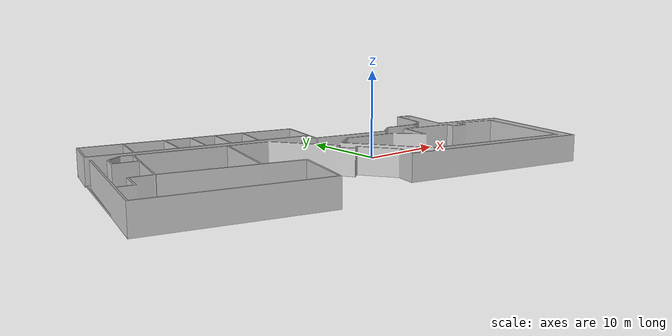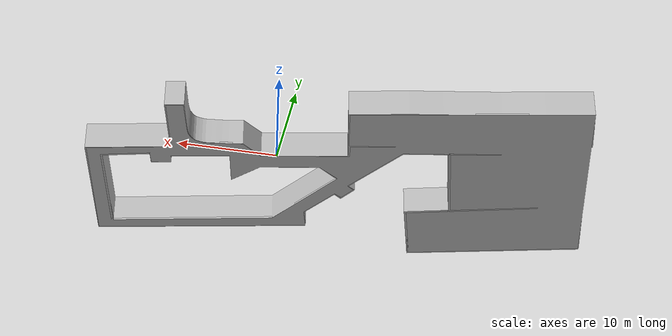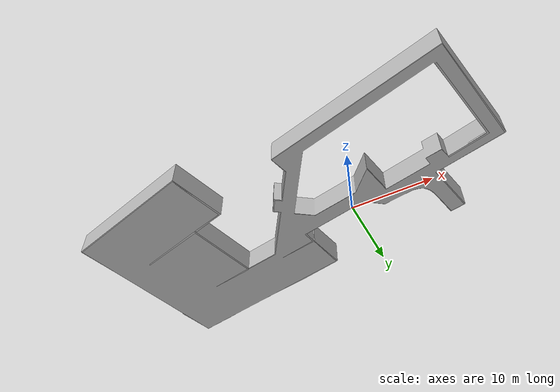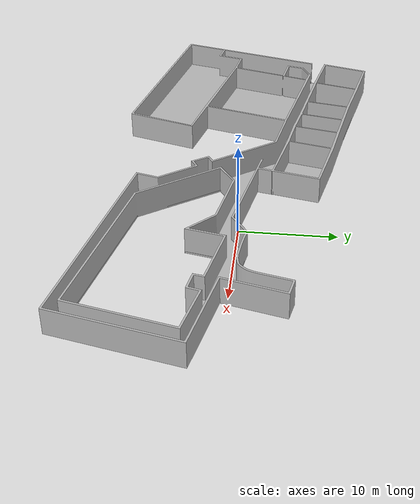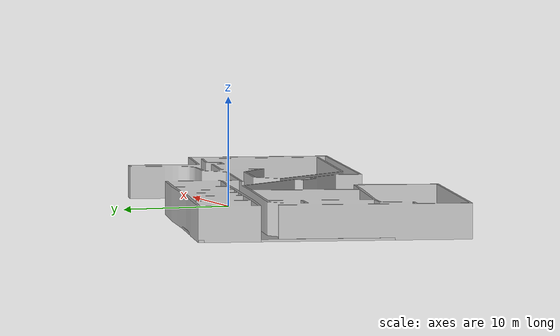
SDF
<?xml version="1.0" ?>
<sdf version="1.6">
  <model name="imt_floor">

    <static>true</static>

    <!-- FLOOR -->
    <link name="floor_link">

      <visual name="floor_visual">
        <geometry>
          <mesh>
            <uri>model://imt_floor/meshes/floor.dae</uri>
          </mesh>
        </geometry>
      </visual>

      <!--
        Detailed imported meshes are kept for visuals only. Gazebo physics is
        much more stable when collisions use simple geometry.
      -->
      <collision name="floor_collision">
        <geometry>
          <plane>
            <normal>0 0 1</normal>
            <size>50 50</size>
          </plane>
        </geometry>
      </collision>

    </link>

    <!-- WALLS -->
    <link name="walls_link">

      <visual name="walls_visual">
        <geometry>
          <mesh>
            <uri>model://imt_floor/meshes/walls.dae</uri>
          </mesh>
        </geometry>
      </visual>

      <collision name="main_corridor_left_wall_collision">
        <pose>2.0 0.75 1.5 0 0 0</pose>
        <geometry>
          <box>
            <size>14.0 0.20 3.0</size>
          </box>
        </geometry>
      </collision>

      <collision name="main_corridor_right_wall_collision">
        <pose>3.0 -2.50 1.5 0 0 0</pose>
        <geometry>
          <box>
            <size>23.5 0.20 3.0</size>
          </box>
        </geometry>
      </collision>

    </link>

  </model>
</sdf>
